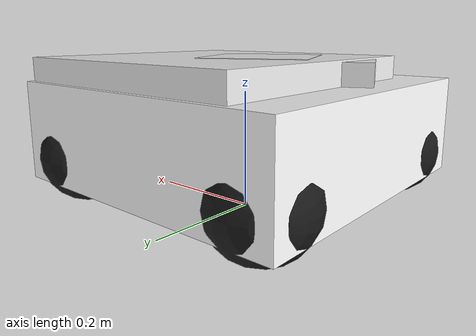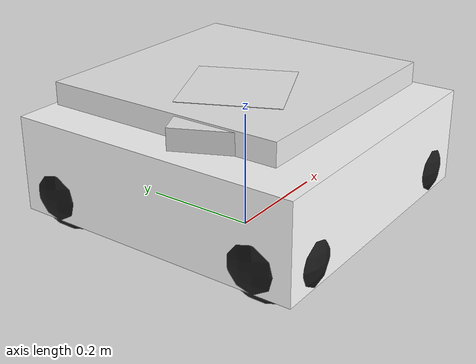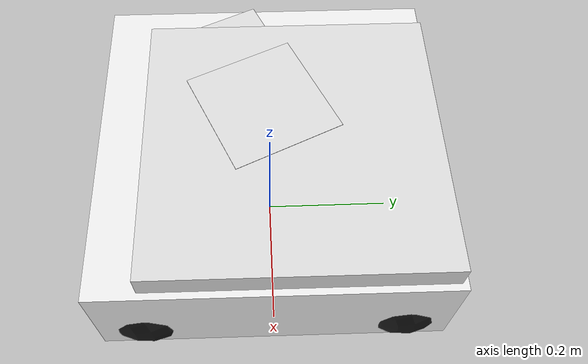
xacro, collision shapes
<?xml version="1.0"?>
<!-- 仿真用简化模型：视觉沿用 SolidWorks 导出的 STL，碰撞和惯量全部用基础形状。
     原始导出版本备份在 sentry/backup/cs_robot_description_20261101 -->
<robot xmlns:xacro="http://www.ros.org/wiki/xacro">

  <!-- ===== 质量参数 (kg)，按真车修改 ===== -->
  <xacro:property name="chassis_mass" value="18.0"/>
  <xacro:property name="gimbal0_mass" value="3.0"/>   <!-- 大 yaw 平台 -->
  <xacro:property name="gimbal2_mass" value="0.4"/>
  <xacro:property name="gimbal1_mass" value="0.3"/>
  <xacro:property name="gimbal3_mass" value="1.5"/>   <!-- 云台头 -->
  <xacro:property name="wheel_mass"   value="0.5"/>
  <xacro:property name="wheel_radius" value="0.076"/>
  <xacro:property name="wheel_mu"     value="0.1"/>   <!-- 轮子摩擦，底盘由 MecanumDrive2 施力驱动，摩擦越小越不拖 -->

  <!-- 实心盒子：碰撞 + 由尺寸自动算惯量 -->
  <xacro:macro name="box_body" params="m xyz x y z">
    <inertial>
      <origin xyz="${xyz}" rpy="0 0 0"/>
      <mass value="${m}"/>
      <inertia ixx="${m*(y*y+z*z)/12}" ixy="0" ixz="0" iyy="${m*(x*x+z*z)/12}" iyz="0" izz="${m*(x*x+y*y)/12}"/>
    </inertial>
    <collision>
      <origin xyz="${xyz}" rpy="0 0 0"/>
      <geometry><box size="${x} ${y} ${z}"/></geometry>
    </collision>
  </xacro:macro>

  <!-- 轮子用球：姿态无关，避免各轮导出坐标系不一致的问题 -->
  <xacro:macro name="wheel_body" params="xyz">
    <inertial>
      <origin xyz="${xyz}" rpy="0 0 0"/>
      <mass value="${wheel_mass}"/>
      <inertia ixx="${0.4*wheel_mass*wheel_radius*wheel_radius}" ixy="0" ixz="0" iyy="${0.4*wheel_mass*wheel_radius*wheel_radius}" iyz="0" izz="${0.4*wheel_mass*wheel_radius*wheel_radius}"/>
    </inertial>
    <collision>
      <origin xyz="${xyz}" rpy="0 0 0"/>
      <geometry><sphere radius="${wheel_radius}"/></geometry>
    </collision>
  </xacro:macro>
  <link name="base_link">
    <xacro:box_body m="${chassis_mass}" xyz="0 0 0.14" x="0.50" y="0.50" z="0.16"/>
    <visual>
      <origin xyz="0 0 0" rpy="0 0 0"/>
      <geometry><mesh filename="package://rm_9_2/meshes/base_link.STL"/></geometry>
      <material name="base_link_mat"><color rgba="1 1 1 1"/></material>
    </visual>
  </link>
  <!-- ===== 云台（折叠机构）：0 为大 yaw，1/3 为两根平行水平轴 ===== -->
  <link name="0_Link">
    <xacro:box_body m="${gimbal0_mass}" xyz="0.03 0.03 0.118" x="0.42" y="0.42" z="0.183"/>
    <visual>
      <origin xyz="0 0 0" rpy="0 0 0"/>
      <geometry><mesh filename="package://rm_9_2/meshes/0_Link.STL"/></geometry>
      <material name="0_Link_mat"><color rgba="0.929411764705882 0.929411764705882 0.929411764705882 1"/></material>
    </visual>
  </link>
  <joint name="0_joint" type="revolute">
    <origin xyz="0.00016203 0.0017341 0.049" rpy="0 0 0"/>
    <parent link="base_link"/>
    <child link="0_Link"/>
    <axis xyz="0 0 1"/>
    <limit lower="${-pi}" upper="${pi}" effort="50" velocity="5"/>
  </joint>
  <link name="2_Link">
    <xacro:box_body m="${gimbal2_mass}" xyz="0.034 0.047 0.013" x="0.131" y="0.156" z="0.056"/>
    <visual>
      <origin xyz="0 0 0" rpy="0 0 0"/>
      <geometry><mesh filename="package://rm_9_2/meshes/2_Link.STL"/></geometry>
      <material name="2_Link_mat"><color rgba="0.0823529411764706 0.0823529411764706 0.0823529411764706 1"/></material>
    </visual>
  </link>
  <joint name="2_joint" type="revolute">
    <origin xyz="-0.13474 -0.061646 0.11285" rpy="0 0 0"/>
    <parent link="0_Link"/>
    <child link="2_Link"/>
    <axis xyz="0 0 1"/>
    <limit lower="${-pi}" upper="${pi}" effort="50" velocity="5"/>
  </joint>
  <link name="1_Link">
    <xacro:box_body m="${gimbal1_mass}" xyz="0.029 0.061 -0.04" x="0.107" y="0.172" z="0.167"/>
    <visual>
      <origin xyz="0 0 0" rpy="0 0 0"/>
      <geometry><mesh filename="package://rm_9_2/meshes/1_Link.STL"/></geometry>
      <material name="1_Link_mat"><color rgba="0.929411764705882 0.929411764705882 0.929411764705882 1"/></material>
    </visual>
  </link>
  <joint name="1_joint" type="revolute">
    <origin xyz="0.031859 0.062468 0.015" rpy="-1.1408 -1.5708 0"/>
    <parent link="2_Link"/>
    <child link="1_Link"/>
    <axis xyz="0 0 -1"/>
    <limit lower="${-pi}" upper="${pi}" effort="50" velocity="5"/>
  </joint>
  <link name="3_Link">
    <xacro:box_body m="${gimbal3_mass}" xyz="0.004 -0.091 0.048" x="0.057" y="0.288" z="0.168"/>
    <visual>
      <origin xyz="0 0 0" rpy="0 0 0"/>
      <geometry><mesh filename="package://rm_9_2/meshes/3_Link.STL"/></geometry>
      <material name="3_Link_mat"><color rgba="0.929411764705882 0.929411764705882 0.929411764705882 1"/></material>
    </visual>
  </link>
  <joint name="3_joint" type="revolute">
    <origin xyz="0.054117 0.1182 -0.0065" rpy="-3.1416 0 3.1416"/>
    <parent link="1_Link"/>
    <child link="3_Link"/>
    <axis xyz="0 0 1"/>
    <limit lower="${-pi}" upper="${pi}" effort="50" velocity="5"/>
  </joint>
  <!-- ===== 轮子：被动转动，仅视觉和支撑 ===== -->
  <link name="L1_Link">
    <xacro:wheel_body xyz="0 0 -0.025"/>
    <visual>
      <origin xyz="0 0 0" rpy="3.14 0 0"/>
      <geometry><mesh filename="package://rm_9_2/meshes/L1_Link.STL"/></geometry>
      <material name="L1_Link_mat"><color rgba="0.1 0.1 0.1 1"/></material>
    </visual>
  </link>
  <gazebo reference="L1_Link">
    <mu1>${wheel_mu}</mu1>
    <mu2>${wheel_mu}</mu2>
  </gazebo>
  <joint name="L1_JOINT" type="continuous">
    <origin xyz="-0.16707 0.16896 0.09735" rpy="2.3562 -1.5708 0"/>
    <parent link="base_link"/>
    <child link="L1_Link"/>
    <axis xyz="0 0 -1"/>
    <limit effort="10" velocity="100"/>
  </joint>
  <link name="L2_Link">
    <xacro:wheel_body xyz="0 0.025 0"/>
    <visual>
      <origin xyz="0 0 0" rpy="-1.57 0 0"/>
      <geometry><mesh filename="package://rm_9_2/meshes/L2_Link.STL"/></geometry>
      <material name="L2_Link_mat"><color rgba="0.1 0.1 0.1 1"/></material>
    </visual>
  </link>
  <gazebo reference="L2_Link">
    <mu1>${wheel_mu}</mu1>
    <mu2>${wheel_mu}</mu2>
  </gazebo>
  <joint name="L2_JOINT" type="continuous">
    <origin xyz="0.16739 0.16896 0.09735" rpy="0.7854 1.5708 0"/>
    <parent link="base_link"/>
    <child link="L2_Link"/>
    <axis xyz="0 1 0"/>
    <limit effort="10" velocity="100"/>
  </joint>
  <link name="L3_Link">
    <xacro:wheel_body xyz="0 0 0.025"/>
    <visual>
      <origin xyz="0 0 0" rpy="0 0 0"/>
      <geometry><mesh filename="package://rm_9_2/meshes/L3_Link.STL"/></geometry>
      <material name="L3_Link_mat"><color rgba="0.1 0.1 0.1 1"/></material>
    </visual>
  </link>
  <gazebo reference="L3_Link">
    <mu1>${wheel_mu}</mu1>
    <mu2>${wheel_mu}</mu2>
  </gazebo>
  <joint name="L3_JOINT" type="continuous">
    <origin xyz="0.16739 -0.1655 0.09735" rpy="0.7854 1.5708 0"/>
    <parent link="base_link"/>
    <child link="L3_Link"/>
    <axis xyz="0 0 1"/>
    <limit effort="10" velocity="100"/>
  </joint>
  <link name="L4_Link">
    <xacro:wheel_body xyz="0 0.025 0"/>
    <visual>
      <origin xyz="0 0 0" rpy="-1.57 0 0"/>
      <geometry><mesh filename="package://rm_9_2/meshes/L4_Link.STL"/></geometry>
      <material name="L4_Link_mat"><color rgba="0.1 0.1 0.1 1"/></material>
    </visual>
  </link>
  <gazebo reference="L4_Link">
    <mu1>${wheel_mu}</mu1>
    <mu2>${wheel_mu}</mu2>
  </gazebo>
  <joint name="L4_JOINT" type="continuous">
    <origin xyz="-0.167068721301789 -0.165496637547365 0.0973500000000011" rpy="2.35619449019234 -1.5707963267949 0"/>
    <parent link="base_link"/>
    <child link="L4_Link"/>
    <axis xyz="0 1 0"/>
    <limit effort="10" velocity="100"/>
  </joint>
</robot>
